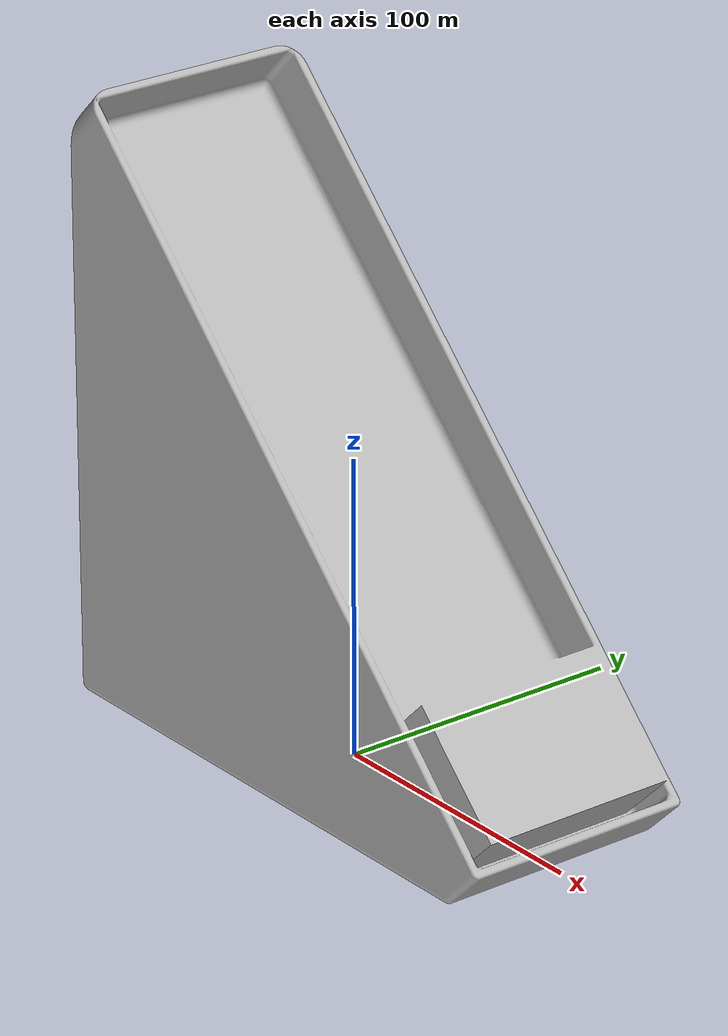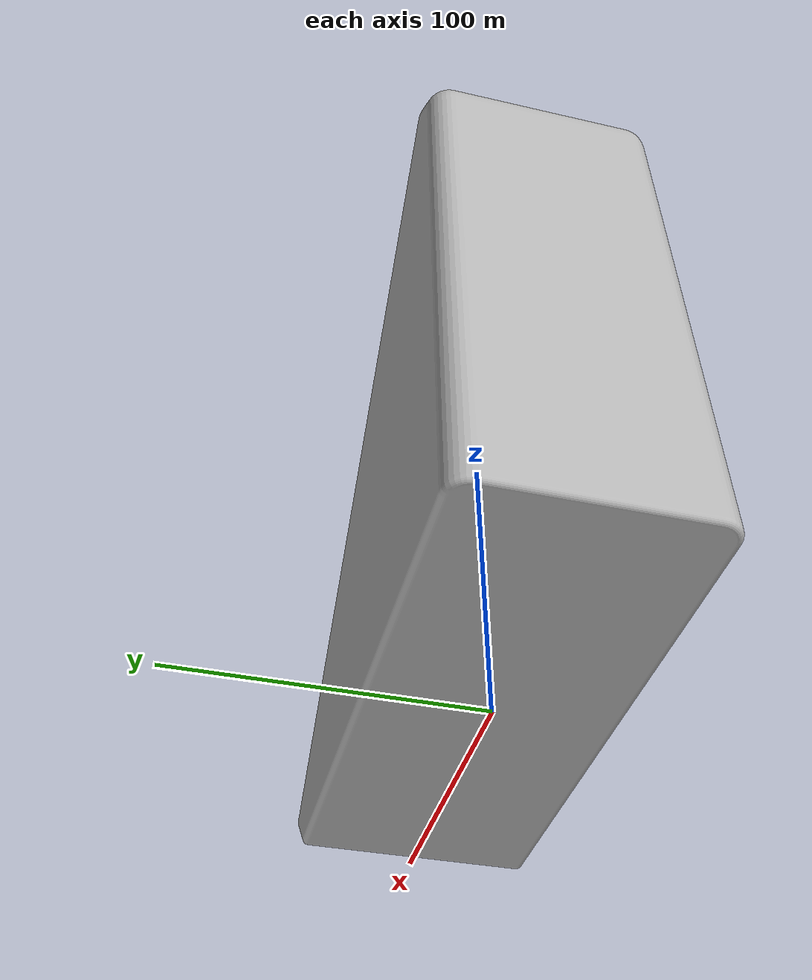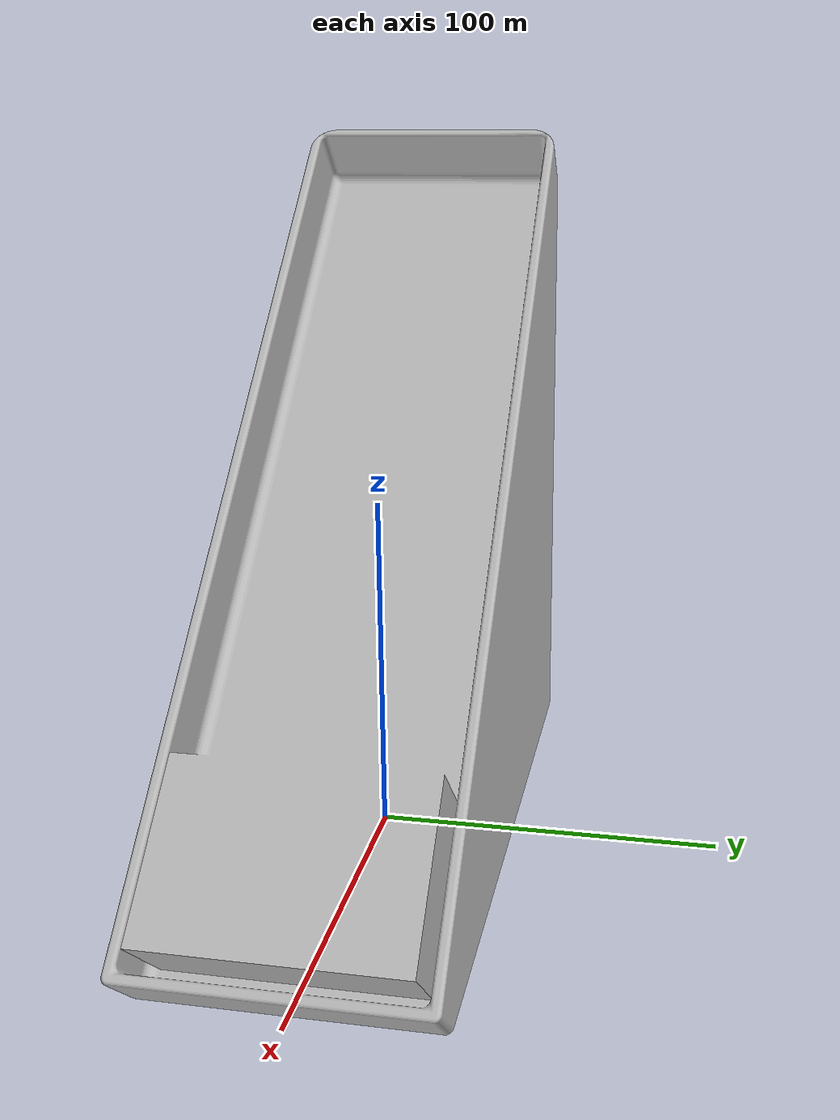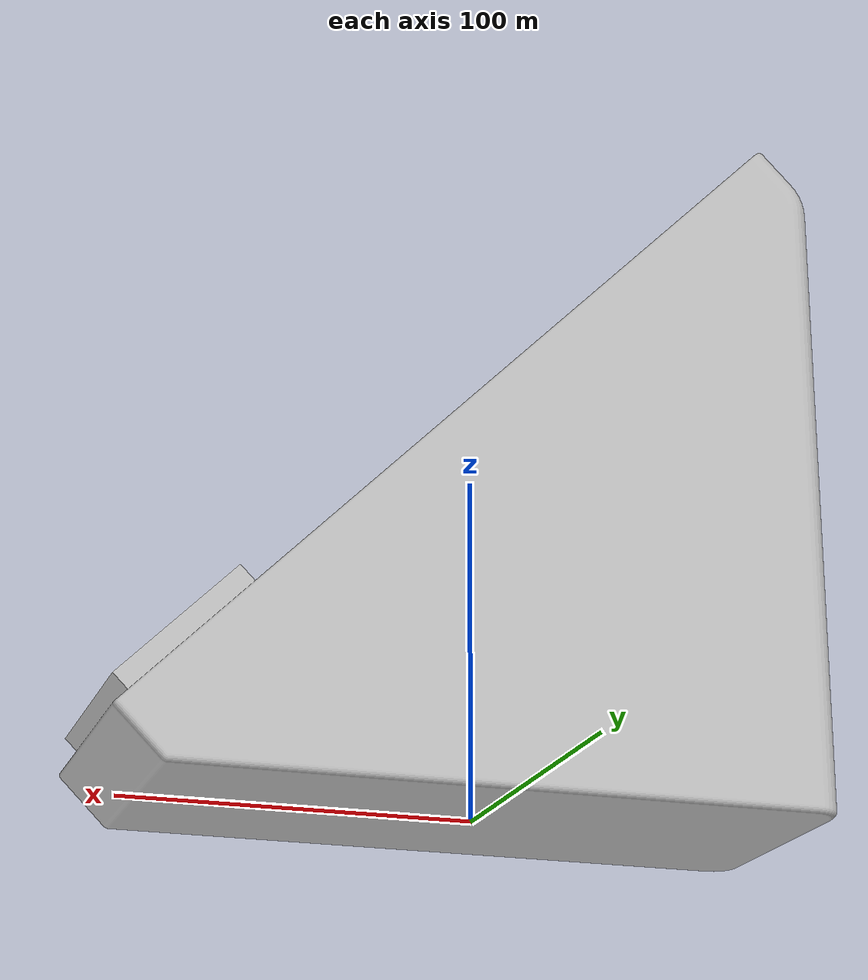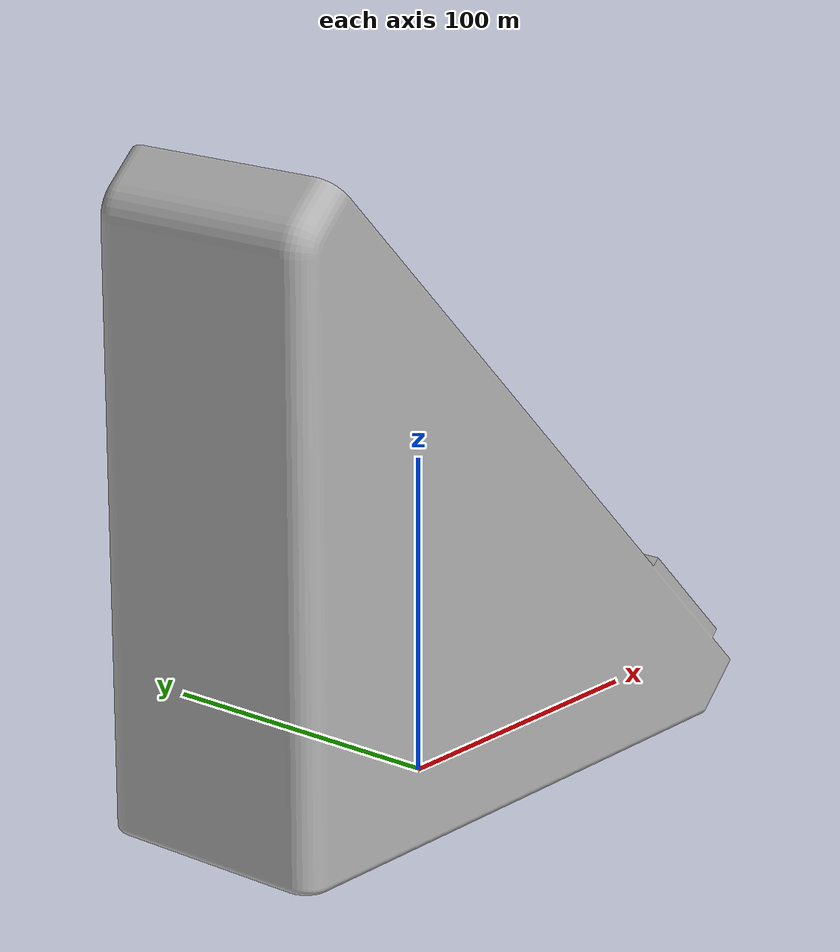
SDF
<?xml version='1.0'?>
<sdf version='1.7'>
  <model name='med_tray'>
    <link name='link_0'>
      <inertial>
        <mass>1</mass>
        <inertia>
          <ixx>0.166667</ixx>
          <ixy>0</ixy>
          <ixz>0</ixz>
          <iyy>0.166667</iyy>
          <iyz>0</iyz>
          <izz>0.166667</izz>
        </inertia>
        <pose>0 0 0 0 -0 0</pose>
      </inertial>
      <pose>0 0 0 0 -0 0</pose>
      <gravity>1</gravity>
      <self_collide>0</self_collide>
      <kinematic>0</kinematic>
      <enable_wind>0</enable_wind>

      <visual name='visual'>
        <pose>0 0 0 0 -0 0</pose>
        <geometry>
          <mesh>
            <uri>model://med_tray_new/meshes/med_tray.dae</uri>
            <scale>1 1 1</scale>  <!-- already scaled in Blender -->
          </mesh>
        </geometry>
      </visual>

      <collision name='collision'>
        <pose>0 0 0 0 -0 0</pose>
        <geometry>
          <mesh>
            <uri>model://med_tray_new/meshes/med_tray.dae</uri>
            <scale>1 1 1</scale>
          </mesh>
        </geometry>
      </collision>
    </link>
    <static>0</static>
    <allow_auto_disable>1</allow_auto_disable>
  </model>
</sdf>
